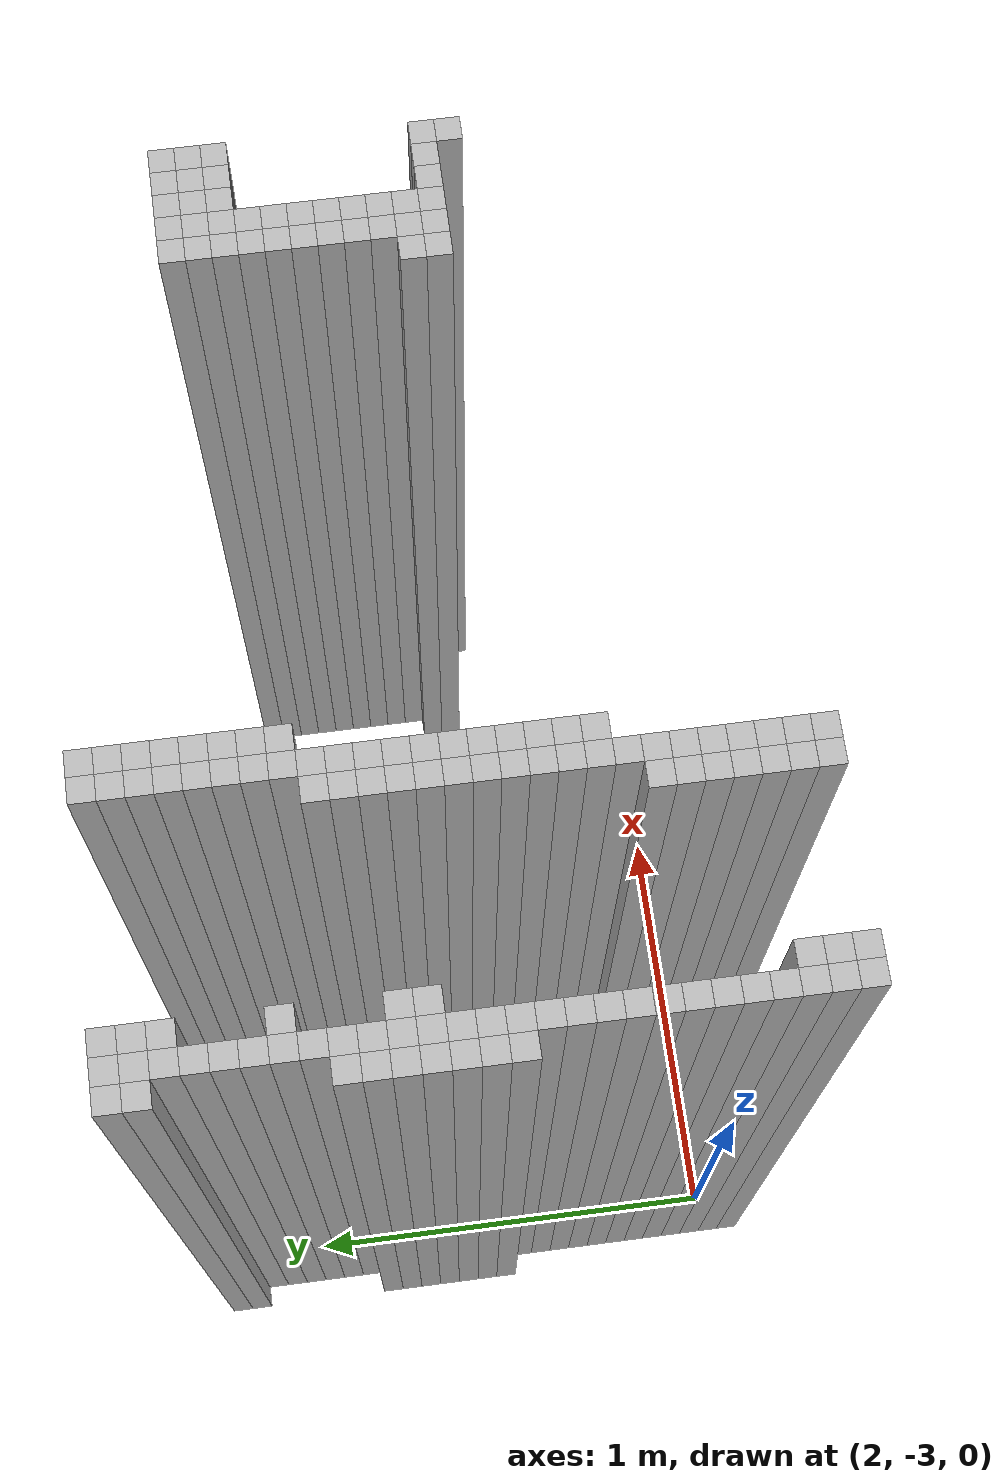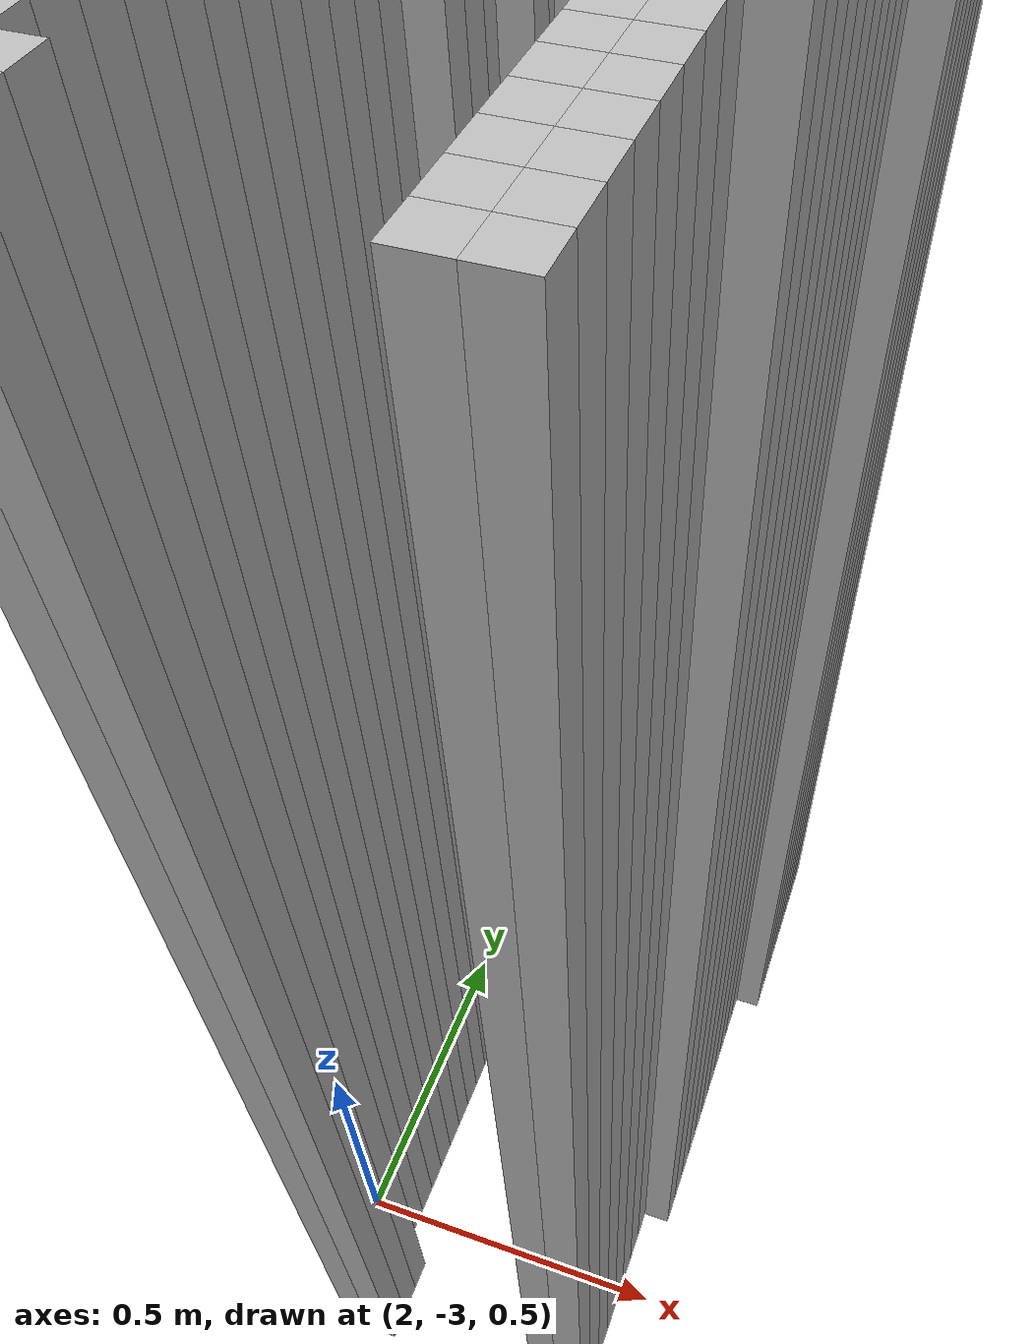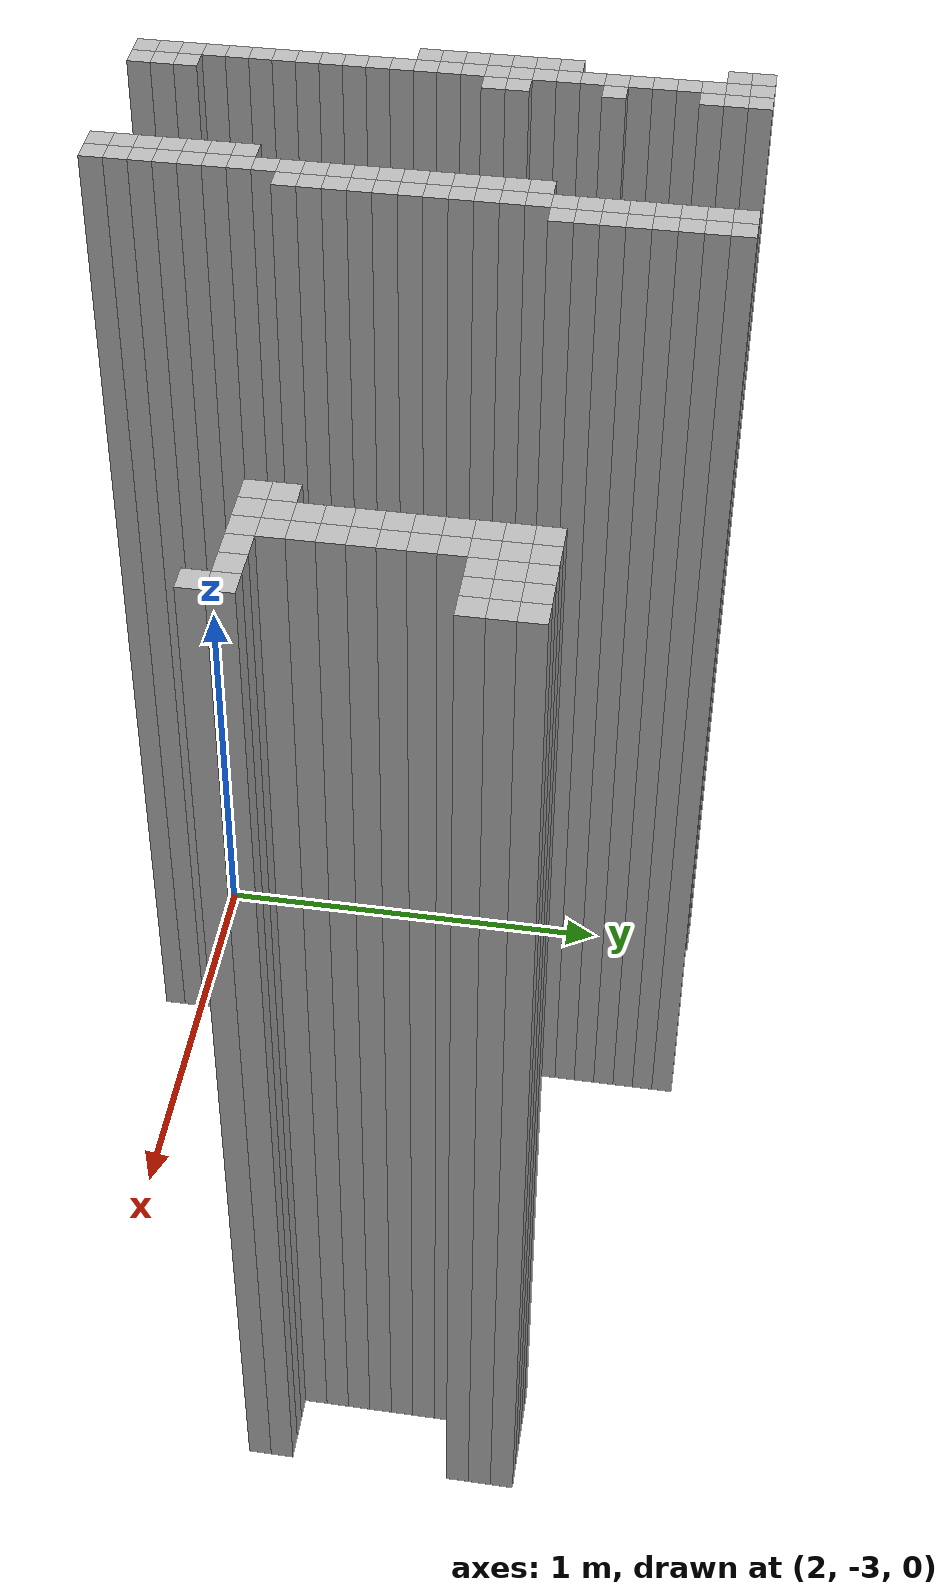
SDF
<sdf version="1.9">
 <world name="map_world">
  <model name="wall_261_189">
   <static>true</static>
   <pose>1.889 -1.770 1.250 0 0 0</pose>
   <link name="link">
    <collision name="collision"><geometry><box><size>0.050 0.050 2.500</size></box></geometry></collision>
    <visual name="visual"><geometry><box><size>0.050 0.050 2.500</size></box></geometry></visual>
   </link>
  </model>
  <model name="wall_262_189">
   <static>true</static>
   <pose>1.939 -1.770 1.250 0 0 0</pose>
   <link name="link">
    <collision name="collision"><geometry><box><size>0.050 0.050 2.500</size></box></geometry></collision>
    <visual name="visual"><geometry><box><size>0.050 0.050 2.500</size></box></geometry></visual>
   </link>
  </model>
  <model name="wall_263_189">
   <static>true</static>
   <pose>1.989 -1.770 1.250 0 0 0</pose>
   <link name="link">
    <collision name="collision"><geometry><box><size>0.050 0.050 2.500</size></box></geometry></collision>
    <visual name="visual"><geometry><box><size>0.050 0.050 2.500</size></box></geometry></visual>
   </link>
  </model>
  <model name="wall_272_189">
   <static>true</static>
   <pose>2.439 -1.770 1.250 0 0 0</pose>
   <link name="link">
    <collision name="collision"><geometry><box><size>0.050 0.050 2.500</size></box></geometry></collision>
    <visual name="visual"><geometry><box><size>0.050 0.050 2.500</size></box></geometry></visual>
   </link>
  </model>
  <model name="wall_273_189">
   <static>true</static>
   <pose>2.489 -1.770 1.250 0 0 0</pose>
   <link name="link">
    <collision name="collision"><geometry><box><size>0.050 0.050 2.500</size></box></geometry></collision>
    <visual name="visual"><geometry><box><size>0.050 0.050 2.500</size></box></geometry></visual>
   </link>
  </model>
  <model name="wall_261_190">
   <static>true</static>
   <pose>1.889 -1.820 1.250 0 0 0</pose>
   <link name="link">
    <collision name="collision"><geometry><box><size>0.050 0.050 2.500</size></box></geometry></collision>
    <visual name="visual"><geometry><box><size>0.050 0.050 2.500</size></box></geometry></visual>
   </link>
  </model>
  <model name="wall_262_190">
   <static>true</static>
   <pose>1.939 -1.820 1.250 0 0 0</pose>
   <link name="link">
    <collision name="collision"><geometry><box><size>0.050 0.050 2.500</size></box></geometry></collision>
    <visual name="visual"><geometry><box><size>0.050 0.050 2.500</size></box></geometry></visual>
   </link>
  </model>
  <model name="wall_263_190">
   <static>true</static>
   <pose>1.989 -1.820 1.250 0 0 0</pose>
   <link name="link">
    <collision name="collision"><geometry><box><size>0.050 0.050 2.500</size></box></geometry></collision>
    <visual name="visual"><geometry><box><size>0.050 0.050 2.500</size></box></geometry></visual>
   </link>
  </model>
  <model name="wall_272_190">
   <static>true</static>
   <pose>2.439 -1.820 1.250 0 0 0</pose>
   <link name="link">
    <collision name="collision"><geometry><box><size>0.050 0.050 2.500</size></box></geometry></collision>
    <visual name="visual"><geometry><box><size>0.050 0.050 2.500</size></box></geometry></visual>
   </link>
  </model>
  <model name="wall_273_190">
   <static>true</static>
   <pose>2.489 -1.820 1.250 0 0 0</pose>
   <link name="link">
    <collision name="collision"><geometry><box><size>0.050 0.050 2.500</size></box></geometry></collision>
    <visual name="visual"><geometry><box><size>0.050 0.050 2.500</size></box></geometry></visual>
   </link>
  </model>
  <model name="wall_262_191">
   <static>true</static>
   <pose>1.939 -1.870 1.250 0 0 0</pose>
   <link name="link">
    <collision name="collision"><geometry><box><size>0.050 0.050 2.500</size></box></geometry></collision>
    <visual name="visual"><geometry><box><size>0.050 0.050 2.500</size></box></geometry></visual>
   </link>
  </model>
  <model name="wall_263_191">
   <static>true</static>
   <pose>1.989 -1.870 1.250 0 0 0</pose>
   <link name="link">
    <collision name="collision"><geometry><box><size>0.050 0.050 2.500</size></box></geometry></collision>
    <visual name="visual"><geometry><box><size>0.050 0.050 2.500</size></box></geometry></visual>
   </link>
  </model>
  <model name="wall_272_191">
   <static>true</static>
   <pose>2.439 -1.870 1.250 0 0 0</pose>
   <link name="link">
    <collision name="collision"><geometry><box><size>0.050 0.050 2.500</size></box></geometry></collision>
    <visual name="visual"><geometry><box><size>0.050 0.050 2.500</size></box></geometry></visual>
   </link>
  </model>
  <model name="wall_273_191">
   <static>true</static>
   <pose>2.489 -1.870 1.250 0 0 0</pose>
   <link name="link">
    <collision name="collision"><geometry><box><size>0.050 0.050 2.500</size></box></geometry></collision>
    <visual name="visual"><geometry><box><size>0.050 0.050 2.500</size></box></geometry></visual>
   </link>
  </model>
  <model name="wall_262_192">
   <static>true</static>
   <pose>1.939 -1.920 1.250 0 0 0</pose>
   <link name="link">
    <collision name="collision"><geometry><box><size>0.050 0.050 2.500</size></box></geometry></collision>
    <visual name="visual"><geometry><box><size>0.050 0.050 2.500</size></box></geometry></visual>
   </link>
  </model>
  <model name="wall_272_192">
   <static>true</static>
   <pose>2.439 -1.920 1.250 0 0 0</pose>
   <link name="link">
    <collision name="collision"><geometry><box><size>0.050 0.050 2.500</size></box></geometry></collision>
    <visual name="visual"><geometry><box><size>0.050 0.050 2.500</size></box></geometry></visual>
   </link>
  </model>
  <model name="wall_273_192">
   <static>true</static>
   <pose>2.489 -1.920 1.250 0 0 0</pose>
   <link name="link">
    <collision name="collision"><geometry><box><size>0.050 0.050 2.500</size></box></geometry></collision>
    <visual name="visual"><geometry><box><size>0.050 0.050 2.500</size></box></geometry></visual>
   </link>
  </model>
  <model name="wall_262_193">
   <static>true</static>
   <pose>1.939 -1.970 1.250 0 0 0</pose>
   <link name="link">
    <collision name="collision"><geometry><box><size>0.050 0.050 2.500</size></box></geometry></collision>
    <visual name="visual"><geometry><box><size>0.050 0.050 2.500</size></box></geometry></visual>
   </link>
  </model>
  <model name="wall_272_193">
   <static>true</static>
   <pose>2.439 -1.970 1.250 0 0 0</pose>
   <link name="link">
    <collision name="collision"><geometry><box><size>0.050 0.050 2.500</size></box></geometry></collision>
    <visual name="visual"><geometry><box><size>0.050 0.050 2.500</size></box></geometry></visual>
   </link>
  </model>
  <model name="wall_273_193">
   <static>true</static>
   <pose>2.489 -1.970 1.250 0 0 0</pose>
   <link name="link">
    <collision name="collision"><geometry><box><size>0.050 0.050 2.500</size></box></geometry></collision>
    <visual name="visual"><geometry><box><size>0.050 0.050 2.500</size></box></geometry></visual>
   </link>
  </model>
  <model name="wall_262_194">
   <static>true</static>
   <pose>1.939 -2.020 1.250 0 0 0</pose>
   <link name="link">
    <collision name="collision"><geometry><box><size>0.050 0.050 2.500</size></box></geometry></collision>
    <visual name="visual"><geometry><box><size>0.050 0.050 2.500</size></box></geometry></visual>
   </link>
  </model>
  <model name="wall_272_194">
   <static>true</static>
   <pose>2.439 -2.020 1.250 0 0 0</pose>
   <link name="link">
    <collision name="collision"><geometry><box><size>0.050 0.050 2.500</size></box></geometry></collision>
    <visual name="visual"><geometry><box><size>0.050 0.050 2.500</size></box></geometry></visual>
   </link>
  </model>
  <model name="wall_273_194">
   <static>true</static>
   <pose>2.489 -2.020 1.250 0 0 0</pose>
   <link name="link">
    <collision name="collision"><geometry><box><size>0.050 0.050 2.500</size></box></geometry></collision>
    <visual name="visual"><geometry><box><size>0.050 0.050 2.500</size></box></geometry></visual>
   </link>
  </model>
  <model name="wall_293_194">
   <static>true</static>
   <pose>3.489 -2.020 1.250 0 0 0</pose>
   <link name="link">
    <collision name="collision"><geometry><box><size>0.050 0.050 2.500</size></box></geometry></collision>
    <visual name="visual"><geometry><box><size>0.050 0.050 2.500</size></box></geometry></visual>
   </link>
  </model>
  <model name="wall_294_194">
   <static>true</static>
   <pose>3.539 -2.020 1.250 0 0 0</pose>
   <link name="link">
    <collision name="collision"><geometry><box><size>0.050 0.050 2.500</size></box></geometry></collision>
    <visual name="visual"><geometry><box><size>0.050 0.050 2.500</size></box></geometry></visual>
   </link>
  </model>
  <model name="wall_295_194">
   <static>true</static>
   <pose>3.589 -2.020 1.250 0 0 0</pose>
   <link name="link">
    <collision name="collision"><geometry><box><size>0.050 0.050 2.500</size></box></geometry></collision>
    <visual name="visual"><geometry><box><size>0.050 0.050 2.500</size></box></geometry></visual>
   </link>
  </model>
  <model name="wall_296_194">
   <static>true</static>
   <pose>3.639 -2.020 1.250 0 0 0</pose>
   <link name="link">
    <collision name="collision"><geometry><box><size>0.050 0.050 2.500</size></box></geometry></collision>
    <visual name="visual"><geometry><box><size>0.050 0.050 2.500</size></box></geometry></visual>
   </link>
  </model>
  <model name="wall_297_194">
   <static>true</static>
   <pose>3.689 -2.020 1.250 0 0 0</pose>
   <link name="link">
    <collision name="collision"><geometry><box><size>0.050 0.050 2.500</size></box></geometry></collision>
    <visual name="visual"><geometry><box><size>0.050 0.050 2.500</size></box></geometry></visual>
   </link>
  </model>
  <model name="wall_262_195">
   <static>true</static>
   <pose>1.939 -2.070 1.250 0 0 0</pose>
   <link name="link">
    <collision name="collision"><geometry><box><size>0.050 0.050 2.500</size></box></geometry></collision>
    <visual name="visual"><geometry><box><size>0.050 0.050 2.500</size></box></geometry></visual>
   </link>
  </model>
  <model name="wall_263_195">
   <static>true</static>
   <pose>1.989 -2.070 1.250 0 0 0</pose>
   <link name="link">
    <collision name="collision"><geometry><box><size>0.050 0.050 2.500</size></box></geometry></collision>
    <visual name="visual"><geometry><box><size>0.050 0.050 2.500</size></box></geometry></visual>
   </link>
  </model>
  <model name="wall_272_195">
   <static>true</static>
   <pose>2.439 -2.070 1.250 0 0 0</pose>
   <link name="link">
    <collision name="collision"><geometry><box><size>0.050 0.050 2.500</size></box></geometry></collision>
    <visual name="visual"><geometry><box><size>0.050 0.050 2.500</size></box></geometry></visual>
   </link>
  </model>
  <model name="wall_273_195">
   <static>true</static>
   <pose>2.489 -2.070 1.250 0 0 0</pose>
   <link name="link">
    <collision name="collision"><geometry><box><size>0.050 0.050 2.500</size></box></geometry></collision>
    <visual name="visual"><geometry><box><size>0.050 0.050 2.500</size></box></geometry></visual>
   </link>
  </model>
  <model name="wall_293_195">
   <static>true</static>
   <pose>3.489 -2.070 1.250 0 0 0</pose>
   <link name="link">
    <collision name="collision"><geometry><box><size>0.050 0.050 2.500</size></box></geometry></collision>
    <visual name="visual"><geometry><box><size>0.050 0.050 2.500</size></box></geometry></visual>
   </link>
  </model>
  <model name="wall_294_195">
   <static>true</static>
   <pose>3.539 -2.070 1.250 0 0 0</pose>
   <link name="link">
    <collision name="collision"><geometry><box><size>0.050 0.050 2.500</size></box></geometry></collision>
    <visual name="visual"><geometry><box><size>0.050 0.050 2.500</size></box></geometry></visual>
   </link>
  </model>
  <model name="wall_295_195">
   <static>true</static>
   <pose>3.589 -2.070 1.250 0 0 0</pose>
   <link name="link">
    <collision name="collision"><geometry><box><size>0.050 0.050 2.500</size></box></geometry></collision>
    <visual name="visual"><geometry><box><size>0.050 0.050 2.500</size></box></geometry></visual>
   </link>
  </model>
  <model name="wall_296_195">
   <static>true</static>
   <pose>3.639 -2.070 1.250 0 0 0</pose>
   <link name="link">
    <collision name="collision"><geometry><box><size>0.050 0.050 2.500</size></box></geometry></collision>
    <visual name="visual"><geometry><box><size>0.050 0.050 2.500</size></box></geometry></visual>
   </link>
  </model>
  <model name="wall_297_195">
   <static>true</static>
   <pose>3.689 -2.070 1.250 0 0 0</pose>
   <link name="link">
    <collision name="collision"><geometry><box><size>0.050 0.050 2.500</size></box></geometry></collision>
    <visual name="visual"><geometry><box><size>0.050 0.050 2.500</size></box></geometry></visual>
   </link>
  </model>
  <model name="wall_262_196">
   <static>true</static>
   <pose>1.939 -2.120 1.250 0 0 0</pose>
   <link name="link">
    <collision name="collision"><geometry><box><size>0.050 0.050 2.500</size></box></geometry></collision>
    <visual name="visual"><geometry><box><size>0.050 0.050 2.500</size></box></geometry></visual>
   </link>
  </model>
  <model name="wall_272_196">
   <static>true</static>
   <pose>2.439 -2.120 1.250 0 0 0</pose>
   <link name="link">
    <collision name="collision"><geometry><box><size>0.050 0.050 2.500</size></box></geometry></collision>
    <visual name="visual"><geometry><box><size>0.050 0.050 2.500</size></box></geometry></visual>
   </link>
  </model>
  <model name="wall_273_196">
   <static>true</static>
   <pose>2.489 -2.120 1.250 0 0 0</pose>
   <link name="link">
    <collision name="collision"><geometry><box><size>0.050 0.050 2.500</size></box></geometry></collision>
    <visual name="visual"><geometry><box><size>0.050 0.050 2.500</size></box></geometry></visual>
   </link>
  </model>
  <model name="wall_293_196">
   <static>true</static>
   <pose>3.489 -2.120 1.250 0 0 0</pose>
   <link name="link">
    <collision name="collision"><geometry><box><size>0.050 0.050 2.500</size></box></geometry></collision>
    <visual name="visual"><geometry><box><size>0.050 0.050 2.500</size></box></geometry></visual>
   </link>
  </model>
  <model name="wall_294_196">
   <static>true</static>
   <pose>3.539 -2.120 1.250 0 0 0</pose>
   <link name="link">
    <collision name="collision"><geometry><box><size>0.050 0.050 2.500</size></box></geometry></collision>
    <visual name="visual"><geometry><box><size>0.050 0.050 2.500</size></box></geometry></visual>
   </link>
  </model>
  <model name="wall_295_196">
   <static>true</static>
   <pose>3.589 -2.120 1.250 0 0 0</pose>
   <link name="link">
    <collision name="collision"><geometry><box><size>0.050 0.050 2.500</size></box></geometry></collision>
    <visual name="visual"><geometry><box><size>0.050 0.050 2.500</size></box></geometry></visual>
   </link>
  </model>
  <model name="wall_296_196">
   <static>true</static>
   <pose>3.639 -2.120 1.250 0 0 0</pose>
   <link name="link">
    <collision name="collision"><geometry><box><size>0.050 0.050 2.500</size></box></geometry></collision>
    <visual name="visual"><geometry><box><size>0.050 0.050 2.500</size></box></geometry></visual>
   </link>
  </model>
  <model name="wall_297_196">
   <static>true</static>
   <pose>3.689 -2.120 1.250 0 0 0</pose>
   <link name="link">
    <collision name="collision"><geometry><box><size>0.050 0.050 2.500</size></box></geometry></collision>
    <visual name="visual"><geometry><box><size>0.050 0.050 2.500</size></box></geometry></visual>
   </link>
  </model>
  <model name="wall_261_197">
   <static>true</static>
   <pose>1.889 -2.170 1.250 0 0 0</pose>
   <link name="link">
    <collision name="collision"><geometry><box><size>0.050 0.050 2.500</size></box></geometry></collision>
    <visual name="visual"><geometry><box><size>0.050 0.050 2.500</size></box></geometry></visual>
   </link>
  </model>
  <model name="wall_262_197">
   <static>true</static>
   <pose>1.939 -2.170 1.250 0 0 0</pose>
   <link name="link">
    <collision name="collision"><geometry><box><size>0.050 0.050 2.500</size></box></geometry></collision>
    <visual name="visual"><geometry><box><size>0.050 0.050 2.500</size></box></geometry></visual>
   </link>
  </model>
  <model name="wall_271_197">
   <static>true</static>
   <pose>2.389 -2.170 1.250 0 0 0</pose>
   <link name="link">
    <collision name="collision"><geometry><box><size>0.050 0.050 2.500</size></box></geometry></collision>
    <visual name="visual"><geometry><box><size>0.050 0.050 2.500</size></box></geometry></visual>
   </link>
  </model>
  <model name="wall_272_197">
   <static>true</static>
   <pose>2.439 -2.170 1.250 0 0 0</pose>
   <link name="link">
    <collision name="collision"><geometry><box><size>0.050 0.050 2.500</size></box></geometry></collision>
    <visual name="visual"><geometry><box><size>0.050 0.050 2.500</size></box></geometry></visual>
   </link>
  </model>
  <model name="wall_293_197">
   <static>true</static>
   <pose>3.489 -2.170 1.250 0 0 0</pose>
   <link name="link">
    <collision name="collision"><geometry><box><size>0.050 0.050 2.500</size></box></geometry></collision>
    <visual name="visual"><geometry><box><size>0.050 0.050 2.500</size></box></geometry></visual>
   </link>
  </model>
  <model name="wall_294_197">
   <static>true</static>
   <pose>3.539 -2.170 1.250 0 0 0</pose>
   <link name="link">
    <collision name="collision"><geometry><box><size>0.050 0.050 2.500</size></box></geometry></collision>
    <visual name="visual"><geometry><box><size>0.050 0.050 2.500</size></box></geometry></visual>
   </link>
  </model>
  <model name="wall_261_198">
   <static>true</static>
   <pose>1.889 -2.220 1.250 0 0 0</pose>
   <link name="link">
    <collision name="collision"><geometry><box><size>0.050 0.050 2.500</size></box></geometry></collision>
    <visual name="visual"><geometry><box><size>0.050 0.050 2.500</size></box></geometry></visual>
   </link>
  </model>
  <model name="wall_262_198">
   <static>true</static>
   <pose>1.939 -2.220 1.250 0 0 0</pose>
   <link name="link">
    <collision name="collision"><geometry><box><size>0.050 0.050 2.500</size></box></geometry></collision>
    <visual name="visual"><geometry><box><size>0.050 0.050 2.500</size></box></geometry></visual>
   </link>
  </model>
  <model name="wall_271_198">
   <static>true</static>
   <pose>2.389 -2.220 1.250 0 0 0</pose>
   <link name="link">
    <collision name="collision"><geometry><box><size>0.050 0.050 2.500</size></box></geometry></collision>
    <visual name="visual"><geometry><box><size>0.050 0.050 2.500</size></box></geometry></visual>
   </link>
  </model>
  <model name="wall_272_198">
   <static>true</static>
   <pose>2.439 -2.220 1.250 0 0 0</pose>
   <link name="link">
    <collision name="collision"><geometry><box><size>0.050 0.050 2.500</size></box></geometry></collision>
    <visual name="visual"><geometry><box><size>0.050 0.050 2.500</size></box></geometry></visual>
   </link>
  </model>
  <model name="wall_293_198">
   <static>true</static>
   <pose>3.489 -2.220 1.250 0 0 0</pose>
   <link name="link">
    <collision name="collision"><geometry><box><size>0.050 0.050 2.500</size></box></geometry></collision>
    <visual name="visual"><geometry><box><size>0.050 0.050 2.500</size></box></geometry></visual>
   </link>
  </model>
  <model name="wall_294_198">
   <static>true</static>
   <pose>3.539 -2.220 1.250 0 0 0</pose>
   <link name="link">
    <collision name="collision"><geometry><box><size>0.050 0.050 2.500</size></box></geometry></collision>
    <visual name="visual"><geometry><box><size>0.050 0.050 2.500</size></box></geometry></visual>
   </link>
  </model>
  <model name="wall_261_199">
   <static>true</static>
   <pose>1.889 -2.270 1.250 0 0 0</pose>
   <link name="link">
    <collision name="collision"><geometry><box><size>0.050 0.050 2.500</size></box></geometry></collision>
    <visual name="visual"><geometry><box><size>0.050 0.050 2.500</size></box></geometry></visual>
   </link>
  </model>
  <model name="wall_262_199">
   <static>true</static>
   <pose>1.939 -2.270 1.250 0 0 0</pose>
   <link name="link">
    <collision name="collision"><geometry><box><size>0.050 0.050 2.500</size></box></geometry></collision>
    <visual name="visual"><geometry><box><size>0.050 0.050 2.500</size></box></geometry></visual>
   </link>
  </model>
  <model name="wall_263_199">
   <static>true</static>
   <pose>1.989 -2.270 1.250 0 0 0</pose>
   <link name="link">
    <collision name="collision"><geometry><box><size>0.050 0.050 2.500</size></box></geometry></collision>
    <visual name="visual"><geometry><box><size>0.050 0.050 2.500</size></box></geometry></visual>
   </link>
  </model>
  <model name="wall_271_199">
   <static>true</static>
   <pose>2.389 -2.270 1.250 0 0 0</pose>
   <link name="link">
    <collision name="collision"><geometry><box><size>0.050 0.050 2.500</size></box></geometry></collision>
    <visual name="visual"><geometry><box><size>0.050 0.050 2.500</size></box></geometry></visual>
   </link>
  </model>
  <model name="wall_272_199">
   <static>true</static>
   <pose>2.439 -2.270 1.250 0 0 0</pose>
   <link name="link">
    <collision name="collision"><geometry><box><size>0.050 0.050 2.500</size></box></geometry></collision>
    <visual name="visual"><geometry><box><size>0.050 0.050 2.500</size></box></geometry></visual>
   </link>
  </model>
  <model name="wall_293_199">
   <static>true</static>
   <pose>3.489 -2.270 1.250 0 0 0</pose>
   <link name="link">
    <collision name="collision"><geometry><box><size>0.050 0.050 2.500</size></box></geometry></collision>
    <visual name="visual"><geometry><box><size>0.050 0.050 2.500</size></box></geometry></visual>
   </link>
  </model>
  <model name="wall_294_199">
   <static>true</static>
   <pose>3.539 -2.270 1.250 0 0 0</pose>
   <link name="link">
    <collision name="collision"><geometry><box><size>0.050 0.050 2.500</size></box></geometry></collision>
    <visual name="visual"><geometry><box><size>0.050 0.050 2.500</size></box></geometry></visual>
   </link>
  </model>
  <model name="wall_261_200">
   <static>true</static>
   <pose>1.889 -2.320 1.250 0 0 0</pose>
   <link name="link">
    <collision name="collision"><geometry><box><size>0.050 0.050 2.500</size></box></geometry></collision>
    <visual name="visual"><geometry><box><size>0.050 0.050 2.500</size></box></geometry></visual>
   </link>
  </model>
  <model name="wall_262_200">
   <static>true</static>
   <pose>1.939 -2.320 1.250 0 0 0</pose>
   <link name="link">
    <collision name="collision"><geometry><box><size>0.050 0.050 2.500</size></box></geometry></collision>
    <visual name="visual"><geometry><box><size>0.050 0.050 2.500</size></box></geometry></visual>
   </link>
  </model>
  <model name="wall_263_200">
   <static>true</static>
   <pose>1.989 -2.320 1.250 0 0 0</pose>
   <link name="link">
    <collision name="collision"><geometry><box><size>0.050 0.050 2.500</size></box></geometry></collision>
    <visual name="visual"><geometry><box><size>0.050 0.050 2.500</size></box></geometry></visual>
   </link>
  </model>
  <model name="wall_271_200">
   <static>true</static>
   <pose>2.389 -2.320 1.250 0 0 0</pose>
   <link name="link">
    <collision name="collision"><geometry><box><size>0.050 0.050 2.500</size></box></geometry></collision>
    <visual name="visual"><geometry><box><size>0.050 0.050 2.500</size></box></geometry></visual>
   </link>
  </model>
  <model name="wall_272_200">
   <static>true</static>
   <pose>2.439 -2.320 1.250 0 0 0</pose>
   <link name="link">
    <collision name="collision"><geometry><box><size>0.050 0.050 2.500</size></box></geometry></collision>
    <visual name="visual"><geometry><box><size>0.050 0.050 2.500</size></box></geometry></visual>
   </link>
  </model>
  <model name="wall_293_200">
   <static>true</static>
   <pose>3.489 -2.320 1.250 0 0 0</pose>
   <link name="link">
    <collision name="collision"><geometry><box><size>0.050 0.050 2.500</size></box></geometry></collision>
    <visual name="visual"><geometry><box><size>0.050 0.050 2.500</size></box></geometry></visual>
   </link>
  </model>
  <model name="wall_294_200">
   <static>true</static>
   <pose>3.539 -2.320 1.250 0 0 0</pose>
   <link name="link">
    <collision name="collision"><geometry><box><size>0.050 0.050 2.500</size></box></geometry></collision>
    <visual name="visual"><geometry><box><size>0.050 0.050 2.500</size></box></geometry></visual>
   </link>
  </model>
  <model name="wall_261_201">
   <static>true</static>
   <pose>1.889 -2.370 1.250 0 0 0</pose>
   <link name="link">
    <collision name="collision"><geometry><box><size>0.050 0.050 2.500</size></box></geometry></collision>
    <visual name="visual"><geometry><box><size>0.050 0.050 2.500</size></box></geometry></visual>
   </link>
  </model>
  <model name="wall_262_201">
   <static>true</static>
   <pose>1.939 -2.370 1.250 0 0 0</pose>
   <link name="link">
    <collision name="collision"><geometry><box><size>0.050 0.050 2.500</size></box></geometry></collision>
    <visual name="visual"><geometry><box><size>0.050 0.050 2.500</size></box></geometry></visual>
   </link>
  </model>
  <model name="wall_271_201">
   <static>true</static>
   <pose>2.389 -2.370 1.250 0 0 0</pose>
   <link name="link">
    <collision name="collision"><geometry><box><size>0.050 0.050 2.500</size></box></geometry></collision>
    <visual name="visual"><geometry><box><size>0.050 0.050 2.500</size></box></geometry></visual>
   </link>
  </model>
  <model name="wall_272_201">
   <static>true</static>
   <pose>2.439 -2.370 1.250 0 0 0</pose>
   <link name="link">
    <collision name="collision"><geometry><box><size>0.050 0.050 2.500</size></box></geometry></collision>
    <visual name="visual"><geometry><box><size>0.050 0.050 2.500</size></box></geometry></visual>
   </link>
  </model>
  <model name="wall_293_201">
   <static>true</static>
   <pose>3.489 -2.370 1.250 0 0 0</pose>
   <link name="link">
    <collision name="collision"><geometry><box><size>0.050 0.050 2.500</size></box></geometry></collision>
    <visual name="visual"><geometry><box><size>0.050 0.050 2.500</size></box></geometry></visual>
   </link>
  </model>
  <model name="wall_294_201">
   <static>true</static>
   <pose>3.539 -2.370 1.250 0 0 0</pose>
   <link name="link">
    <collision name="collision"><geometry><box><size>0.050 0.050 2.500</size></box></geometry></collision>
    <visual name="visual"><geometry><box><size>0.050 0.050 2.500</size></box></geometry></visual>
   </link>
  </model>
  <model name="wall_261_202">
   <static>true</static>
   <pose>1.889 -2.420 1.250 0 0 0</pose>
   <link name="link">
    <collision name="collision"><geometry><box><size>0.050 0.050 2.500</size></box></geometry></collision>
    <visual name="visual"><geometry><box><size>0.050 0.050 2.500</size></box></geometry></visual>
   </link>
  </model>
  <model name="wall_262_202">
   <static>true</static>
   <pose>1.939 -2.420 1.250 0 0 0</pose>
   <link name="link">
    <collision name="collision"><geometry><box><size>0.050 0.050 2.500</size></box></geometry></collision>
    <visual name="visual"><geometry><box><size>0.050 0.050 2.500</size></box></geometry></visual>
   </link>
  </model>
  <model name="wall_271_202">
   <static>true</static>
   <pose>2.389 -2.420 1.250 0 0 0</pose>
   <link name="link">
    <collision name="collision"><geometry><box><size>0.050 0.050 2.500</size></box></geometry></collision>
    <visual name="visual"><geometry><box><size>0.050 0.050 2.500</size></box></geometry></visual>
   </link>
  </model>
  <model name="wall_272_202">
   <static>true</static>
   <pose>2.439 -2.420 1.250 0 0 0</pose>
   <link name="link">
    <collision name="collision"><geometry><box><size>0.050 0.050 2.500</size></box></geometry></collision>
    <visual name="visual"><geometry><box><size>0.050 0.050 2.500</size></box></geometry></visual>
   </link>
  </model>
  <model name="wall_293_202">
   <static>true</static>
   <pose>3.489 -2.420 1.250 0 0 0</pose>
   <link name="link">
    <collision name="collision"><geometry><box><size>0.050 0.050 2.500</size></box></geometry></collision>
    <visual name="visual"><geometry><box><size>0.050 0.050 2.500</size></box></geometry></visual>
   </link>
  </model>
  <model name="wall_294_202">
   <static>true</static>
   <pose>3.539 -2.420 1.250 0 0 0</pose>
   <link name="link">
    <collision name="collision"><geometry><box><size>0.050 0.050 2.500</size></box></geometry></collision>
    <visual name="visual"><geometry><box><size>0.050 0.050 2.500</size></box></geometry></visual>
   </link>
  </model>
  <model name="wall_261_203">
   <static>true</static>
   <pose>1.889 -2.470 1.250 0 0 0</pose>
   <link name="link">
    <collision name="collision"><geometry><box><size>0.050 0.050 2.500</size></box></geometry></collision>
    <visual name="visual"><geometry><box><size>0.050 0.050 2.500</size></box></geometry></visual>
   </link>
  </model>
  <model name="wall_262_203">
   <static>true</static>
   <pose>1.939 -2.470 1.250 0 0 0</pose>
   <link name="link">
    <collision name="collision"><geometry><box><size>0.050 0.050 2.500</size></box></geometry></collision>
    <visual name="visual"><geometry><box><size>0.050 0.050 2.500</size></box></geometry></visual>
   </link>
  </model>
  <model name="wall_271_203">
   <static>true</static>
   <pose>2.389 -2.470 1.250 0 0 0</pose>
   <link name="link">
    <collision name="collision"><geometry><box><size>0.050 0.050 2.500</size></box></geometry></collision>
    <visual name="visual"><geometry><box><size>0.050 0.050 2.500</size></box></geometry></visual>
   </link>
  </model>
  <model name="wall_272_203">
   <static>true</static>
   <pose>2.439 -2.470 1.250 0 0 0</pose>
   <link name="link">
    <collision name="collision"><geometry><box><size>0.050 0.050 2.500</size></box></geometry></collision>
    <visual name="visual"><geometry><box><size>0.050 0.050 2.500</size></box></geometry></visual>
   </link>
  </model>
  <model name="wall_292_203">
   <static>true</static>
   <pose>3.439 -2.470 1.250 0 0 0</pose>
   <link name="link">
    <collision name="collision"><geometry><box><size>0.050 0.050 2.500</size></box></geometry></collision>
    <visual name="visual"><geometry><box><size>0.050 0.050 2.500</size></box></geometry></visual>
   </link>
  </model>
  <model name="wall_293_203">
   <static>true</static>
   <pose>3.489 -2.470 1.250 0 0 0</pose>
   <link name="link">
    <collision name="collision"><geometry><box><size>0.050 0.050 2.500</size></box></geometry></collision>
    <visual name="visual"><geometry><box><size>0.050 0.050 2.500</size></box></geometry></visual>
   </link>
  </model>
  <model name="wall_294_203">
   <static>true</static>
   <pose>3.539 -2.470 1.250 0 0 0</pose>
   <link name="link">
    <collision name="collision"><geometry><box><size>0.050 0.050 2.500</size></box></geometry></collision>
    <visual name="visual"><geometry><box><size>0.050 0.050 2.500</size></box></geometry></visual>
   </link>
  </model>
  <model name="wall_262_204">
   <static>true</static>
   <pose>1.939 -2.520 1.250 0 0 0</pose>
   <link name="link">
    <collision name="collision"><geometry><box><size>0.050 0.050 2.500</size></box></geometry></collision>
    <visual name="visual"><geometry><box><size>0.050 0.050 2.500</size></box></geometry></visual>
   </link>
  </model>
  <model name="wall_271_204">
   <static>true</static>
   <pose>2.389 -2.520 1.250 0 0 0</pose>
   <link name="link">
    <collision name="collision"><geometry><box><size>0.050 0.050 2.500</size></box></geometry></collision>
    <visual name="visual"><geometry><box><size>0.050 0.050 2.500</size></box></geometry></visual>
   </link>
  </model>
  <model name="wall_272_204">
   <static>true</static>
   <pose>2.439 -2.520 1.250 0 0 0</pose>
   <link name="link">
    <collision name="collision"><geometry><box><size>0.050 0.050 2.500</size></box></geometry></collision>
    <visual name="visual"><geometry><box><size>0.050 0.050 2.500</size></box></geometry></visual>
   </link>
  </model>
  <model name="wall_292_204">
   <static>true</static>
   <pose>3.439 -2.520 1.250 0 0 0</pose>
   <link name="link">
    <collision name="collision"><geometry><box><size>0.050 0.050 2.500</size></box></geometry></collision>
    <visual name="visual"><geometry><box><size>0.050 0.050 2.500</size></box></geometry></visual>
   </link>
  </model>
  <model name="wall_293_204">
   <static>true</static>
   <pose>3.489 -2.520 1.250 0 0 0</pose>
   <link name="link">
    <collision name="collision"><geometry><box><size>0.050 0.050 2.500</size></box></geometry></collision>
    <visual name="visual"><geometry><box><size>0.050 0.050 2.500</size></box></geometry></visual>
   </link>
  </model>
  <model name="wall_294_204">
   <static>true</static>
   <pose>3.539 -2.520 1.250 0 0 0</pose>
   <link name="link">
    <collision name="collision"><geometry><box><size>0.050 0.050 2.500</size></box></geometry></collision>
    <visual name="visual"><geometry><box><size>0.050 0.050 2.500</size></box></geometry></visual>
   </link>
  </model>
  <model name="wall_295_204">
   <static>true</static>
   <pose>3.589 -2.520 1.250 0 0 0</pose>
   <link name="link">
    <collision name="collision"><geometry><box><size>0.050 0.050 2.500</size></box></geometry></collision>
    <visual name="visual"><geometry><box><size>0.050 0.050 2.500</size></box></geometry></visual>
   </link>
  </model>
  <model name="wall_296_204">
   <static>true</static>
   <pose>3.639 -2.520 1.250 0 0 0</pose>
   <link name="link">
    <collision name="collision"><geometry><box><size>0.050 0.050 2.500</size></box></geometry></collision>
    <visual name="visual"><geometry><box><size>0.050 0.050 2.500</size></box></geometry></visual>
   </link>
  </model>
  <model name="wall_297_204">
   <static>true</static>
   <pose>3.689 -2.520 1.250 0 0 0</pose>
   <link name="link">
    <collision name="collision"><geometry><box><size>0.050 0.050 2.500</size></box></geometry></collision>
    <visual name="visual"><geometry><box><size>0.050 0.050 2.500</size></box></geometry></visual>
   </link>
  </model>
  <model name="wall_262_205">
   <static>true</static>
   <pose>1.939 -2.570 1.250 0 0 0</pose>
   <link name="link">
    <collision name="collision"><geometry><box><size>0.050 0.050 2.500</size></box></geometry></collision>
    <visual name="visual"><geometry><box><size>0.050 0.050 2.500</size></box></geometry></visual>
   </link>
  </model>
  <model name="wall_271_205">
   <static>true</static>
   <pose>2.389 -2.570 1.250 0 0 0</pose>
   <link name="link">
    <collision name="collision"><geometry><box><size>0.050 0.050 2.500</size></box></geometry></collision>
    <visual name="visual"><geometry><box><size>0.050 0.050 2.500</size></box></geometry></visual>
   </link>
  </model>
  <model name="wall_272_205">
   <static>true</static>
   <pose>2.439 -2.570 1.250 0 0 0</pose>
   <link name="link">
    <collision name="collision"><geometry><box><size>0.050 0.050 2.500</size></box></geometry></collision>
    <visual name="visual"><geometry><box><size>0.050 0.050 2.500</size></box></geometry></visual>
   </link>
  </model>
  <model name="wall_297_205">
   <static>true</static>
   <pose>3.689 -2.570 1.250 0 0 0</pose>
   <link name="link">
    <collision name="collision"><geometry><box><size>0.050 0.050 2.500</size></box></geometry></collision>
    <visual name="visual"><geometry><box><size>0.050 0.050 2.500</size></box></geometry></visual>
   </link>
  </model>
  <model name="wall_262_206">
   <static>true</static>
   <pose>1.939 -2.620 1.250 0 0 0</pose>
   <link name="link">
    <collision name="collision"><geometry><box><size>0.050 0.050 2.500</size></box></geometry></collision>
    <visual name="visual"><geometry><box><size>0.050 0.050 2.500</size></box></geometry></visual>
   </link>
  </model>
  <model name="wall_271_206">
   <static>true</static>
   <pose>2.389 -2.620 1.250 0 0 0</pose>
   <link name="link">
    <collision name="collision"><geometry><box><size>0.050 0.050 2.500</size></box></geometry></collision>
    <visual name="visual"><geometry><box><size>0.050 0.050 2.500</size></box></geometry></visual>
   </link>
  </model>
  <model name="wall_272_206">
   <static>true</static>
   <pose>2.439 -2.620 1.250 0 0 0</pose>
   <link name="link">
    <collision name="collision"><geometry><box><size>0.050 0.050 2.500</size></box></geometry></collision>
    <visual name="visual"><geometry><box><size>0.050 0.050 2.500</size></box></geometry></visual>
   </link>
  </model>
  <model name="wall_262_207">
   <static>true</static>
   <pose>1.939 -2.670 1.250 0 0 0</pose>
   <link name="link">
    <collision name="collision"><geometry><box><size>0.050 0.050 2.500</size></box></geometry></collision>
    <visual name="visual"><geometry><box><size>0.050 0.050 2.500</size></box></geometry></visual>
   </link>
  </model>
  <model name="wall_271_207">
   <static>true</static>
   <pose>2.389 -2.670 1.250 0 0 0</pose>
   <link name="link">
    <collision name="collision"><geometry><box><size>0.050 0.050 2.500</size></box></geometry></collision>
    <visual name="visual"><geometry><box><size>0.050 0.050 2.500</size></box></geometry></visual>
   </link>
  </model>
  <model name="wall_272_207">
   <static>true</static>
   <pose>2.439 -2.670 1.250 0 0 0</pose>
   <link name="link">
    <collision name="collision"><geometry><box><size>0.050 0.050 2.500</size></box></geometry></collision>
    <visual name="visual"><geometry><box><size>0.050 0.050 2.500</size></box></geometry></visual>
   </link>
  </model>
  <model name="wall_262_208">
   <static>true</static>
   <pose>1.939 -2.720 1.250 0 0 0</pose>
   <link name="link">
    <collision name="collision"><geometry><box><size>0.050 0.050 2.500</size></box></geometry></collision>
    <visual name="visual"><geometry><box><size>0.050 0.050 2.500</size></box></geometry></visual>
   </link>
  </model>
  <model name="wall_271_208">
   <static>true</static>
   <pose>2.389 -2.720 1.250 0 0 0</pose>
   <link name="link">
    <collision name="collision"><geometry><box><size>0.050 0.050 2.500</size></box></geometry></collision>
    <visual name="visual"><geometry><box><size>0.050 0.050 2.500</size></box></geometry></visual>
   </link>
  </model>
  <model name="wall_262_209">
   <static>true</static>
   <pose>1.939 -2.770 1.250 0 0 0</pose>
   <link name="link">
    <collision name="collision"><geometry><box><size>0.050 0.050 2.500</size></box></geometry></collision>
    <visual name="visual"><geometry><box><size>0.050 0.050 2.500</size></box></geometry></visual>
   </link>
  </model>
  <model name="wall_270_209">
   <static>true</static>
   <pose>2.339 -2.770 1.250 0 0 0</pose>
   <link name="link">
    <collision name="collision"><geometry><box><size>0.050 0.050 2.500</size></box></geometry></collision>
    <visual name="visual"><geometry><box><size>0.050 0.050 2.500</size></box></geometry></visual>
   </link>
  </model>
  <model name="wall_271_209">
   <static>true</static>
   <pose>2.389 -2.770 1.250 0 0 0</pose>
   <link name="link">
    <collision name="collision"><geometry><box><size>0.050 0.050 2.500</size></box></geometry></collision>
    <visual name="visual"><geometry><box><size>0.050 0.050 2.500</size></box></geometry></visual>
   </link>
  </model>
  <model name="wall_262_210">
   <static>true</static>
   <pose>1.939 -2.820 1.250 0 0 0</pose>
   <link name="link">
    <collision name="collision"><geometry><box><size>0.050 0.050 2.500</size></box></geometry></collision>
    <visual name="visual"><geometry><box><size>0.050 0.050 2.500</size></box></geometry></visual>
   </link>
  </model>
  <model name="wall_270_210">
   <static>true</static>
   <pose>2.339 -2.820 1.250 0 0 0</pose>
   <link name="link">
    <collision name="collision"><geometry><box><size>0.050 0.050 2.500</size></box></geometry></collision>
    <visual name="visual"><geometry><box><size>0.050 0.050 2.500</size></box></geometry></visual>
   </link>
  </model>
  <model name="wall_271_210">
   <static>true</static>
   <pose>2.389 -2.820 1.250 0 0 0</pose>
   <link name="link">
    <collision name="collision"><geometry><box><size>0.050 0.050 2.500</size></box></geometry></collision>
    <visual name="visual"><geometry><box><size>0.050 0.050 2.500</size></box></geometry></visual>
   </link>
  </model>
  <model name="wall_262_211">
   <static>true</static>
   <pose>1.939 -2.870 1.250 0 0 0</pose>
   <link name="link">
    <collision name="collision"><geometry><box><size>0.050 0.050 2.500</size></box></geometry></collision>
    <visual name="visual"><geometry><box><size>0.050 0.050 2.500</size></box></geometry></visual>
   </link>
  </model>
  <model name="wall_270_211">
   <static>true</static>
   <pose>2.339 -2.870 1.250 0 0 0</pose>
   <link name="link">
    <collision name="collision"><geometry><box><size>0.050 0.050 2.500</size></box></geometry></collision>
    <visual name="visual"><geometry><box><size>0.050 0.050 2.500</size></box></geometry></visual>
   </link>
  </model>
  <model name="wall_271_211">
   <static>true</static>
   <pose>2.389 -2.870 1.250 0 0 0</pose>
   <link name="link">
    <collision name="collision"><geometry><box><size>0.050 0.050 2.500</size></box></geometry></collision>
    <visual name="visual"><geometry><box><size>0.050 0.050 2.500</size></box></geometry></visual>
   </link>
  </model>
  <model name="wall_262_212">
   <static>true</static>
   <pose>1.939 -2.920 1.250 0 0 0</pose>
   <link name="link">
    <collision name="collision"><geometry><box><size>0.050 0.050 2.500</size></box></geometry></collision>
    <visual name="visual"><geometry><box><size>0.050 0.050 2.500</size></box></geometry></visual>
   </link>
  </model>
  <model name="wall_270_212">
   <static>true</static>
   <pose>2.339 -2.920 1.250 0 0 0</pose>
   <link name="link">
    <collision name="collision"><geometry><box><size>0.050 0.050 2.500</size></box></geometry></collision>
    <visual name="visual"><geometry><box><size>0.050 0.050 2.500</size></box></geometry></visual>
   </link>
  </model>
  <model name="wall_271_212">
   <static>true</static>
   <pose>2.389 -2.920 1.250 0 0 0</pose>
   <link name="link">
    <collision name="collision"><geometry><box><size>0.050 0.050 2.500</size></box></geometry></collision>
    <visual name="visual"><geometry><box><size>0.050 0.050 2.500</size></box></geometry></visual>
   </link>
  </model>
  <model name="wall_262_213">
   <static>true</static>
   <pose>1.939 -2.970 1.250 0 0 0</pose>
   <link name="link">
    <collision name="collision"><geometry><box><size>0.050 0.050 2.500</size></box></geometry></collision>
    <visual name="visual"><geometry><box><size>0.050 0.050 2.500</size></box></geometry></visual>
   </link>
  </model>
  <model name="wall_263_213">
   <static>true</static>
   <pose>1.989 -2.970 1.250 0 0 0</pose>
   <link name="link">
    <collision name="collision"><geometry><box><size>0.050 0.050 2.500</size></box></geometry></collision>
    <visual name="visual"><geometry><box><size>0.050 0.050 2.500</size></box></geometry></visual>
   </link>
  </model>
  <model name="wall_270_213">
   <static>true</static>
   <pose>2.339 -2.970 1.250 0 0 0</pose>
   <link name="link">
    <collision name="collision"><geometry><box><size>0.050 0.050 2.500</size></box></geometry></collision>
    <visual name="visual"><geometry><box><size>0.050 0.050 2.500</size></box></geometry></visual>
   </link>
  </model>
  <model name="wall_271_213">
   <static>true</static>
   <pose>2.389 -2.970 1.250 0 0 0</pose>
   <link name="link">
    <collision name="collision"><geometry><box><size>0.050 0.050 2.500</size></box></geometry></collision>
    <visual name="visual"><geometry><box><size>0.050 0.050 2.500</size></box></geometry></visual>
   </link>
  </model>
  <model name="wall_262_214">
   <static>true</static>
   <pose>1.939 -3.020 1.250 0 0 0</pose>
   <link name="link">
    <collision name="collision"><geometry><box><size>0.050 0.050 2.500</size></box></geometry></collision>
    <visual name="visual"><geometry><box><size>0.050 0.050 2.500</size></box></geometry></visual>
   </link>
  </model>
  <model name="wall_263_214">
   <static>true</static>
   <pose>1.989 -3.020 1.250 0 0 0</pose>
   <link name="link">
    <collision name="collision"><geometry><box><size>0.050 0.050 2.500</size></box></geometry></collision>
    <visual name="visual"><geometry><box><size>0.050 0.050 2.500</size></box></geometry></visual>
   </link>
  </model>
  <model name="wall_270_214">
   <static>true</static>
   <pose>2.339 -3.020 1.250 0 0 0</pose>
   <link name="link">
    <collision name="collision"><geometry><box><size>0.050 0.050 2.500</size></box></geometry></collision>
    <visual name="visual"><geometry><box><size>0.050 0.050 2.500</size></box></geometry></visual>
   </link>
  </model>
  <model name="wall_271_214">
   <static>true</static>
   <pose>2.389 -3.020 1.250 0 0 0</pose>
   <link name="link">
    <collision name="collision"><geometry><box><size>0.050 0.050 2.500</size></box></geometry></collision>
    <visual name="visual"><geometry><box><size>0.050 0.050 2.500</size></box></geometry></visual>
   </link>
  </model>
  <model name="wall_262_215">
   <static>true</static>
   <pose>1.939 -3.070 1.250 0 0 0</pose>
   <link name="link">
    <collision name="collision"><geometry><box><size>0.050 0.050 2.500</size></box></geometry></collision>
    <visual name="visual"><geometry><box><size>0.050 0.050 2.500</size></box></geometry></visual>
   </link>
  </model>
  <model name="wall_263_215">
   <static>true</static>
   <pose>1.989 -3.070 1.250 0 0 0</pose>
   <link name="link">
    <collision name="collision"><geometry><box><size>0.050 0.050 2.500</size></box></geometry></collision>
    <visual name="visual"><geometry><box><size>0.050 0.050 2.500</size></box></geometry></visual>
   </link>
  </model>
  <model name="wall_270_215">
   <static>true</static>
   <pose>2.339 -3.070 1.250 0 0 0</pose>
   <link name="link">
    <collision name="collision"><geometry><box><size>0.050 0.050 2.500</size></box></geometry></collision>
    <visual name="visual"><geometry><box><size>0.050 0.050 2.500</size></box></geometry></visual>
   </link>
  </model>
  <model name="wall_271_215">
   <static>true</static>
   <pose>2.389 -3.070 1.250 0 0 0</pose>
   <link name="link">
    <collision name="collision"><geometry><box><size>0.050 0.050 2.500</size></box></geometry></collision>
    <visual name="visual"><geometry><box><size>0.050 0.050 2.500</size></box></geometry></visual>
   </link>
  </model>
 </world>
</sdf>
